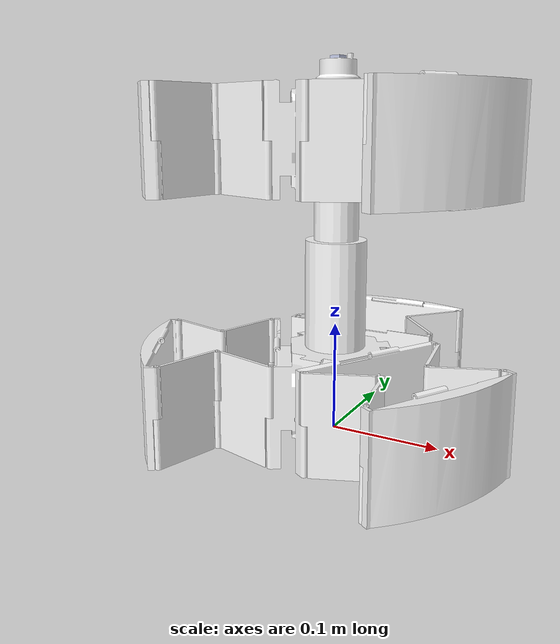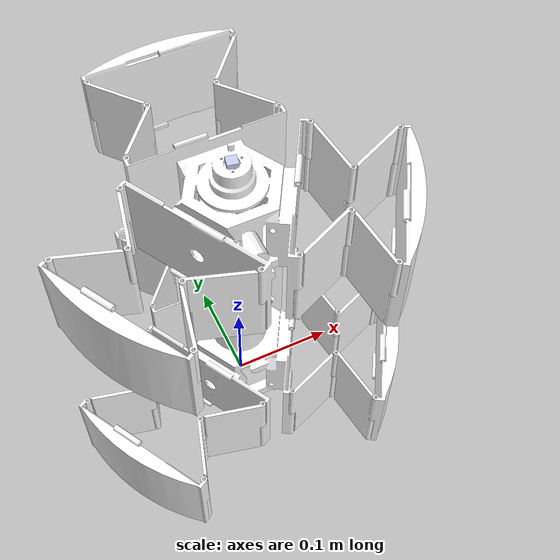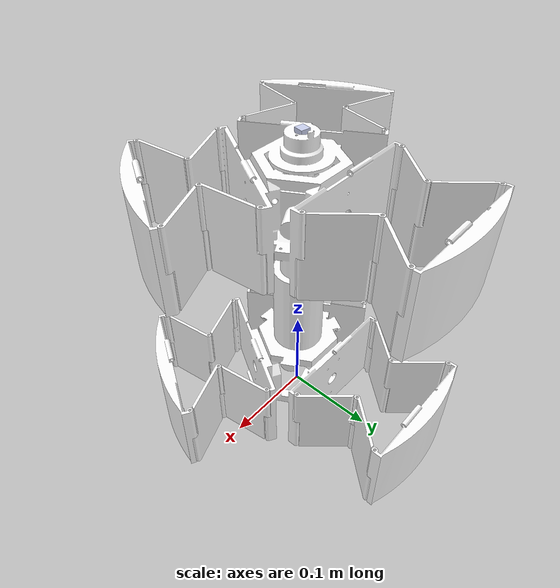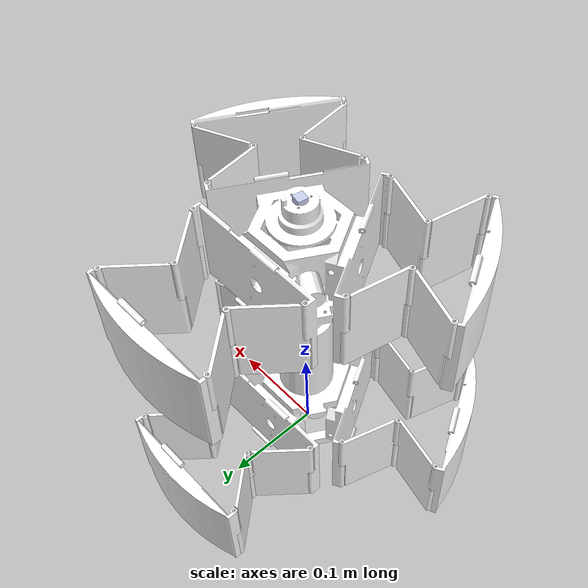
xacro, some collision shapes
<?xml version="1.0"?>
<robot name="robot_model" xmlns:xacro="http://www.ros.org/wiki/xacro">
  <link
    name="base_link">
    <inertial>
      <origin
        xyz="0 -6.9389E-17 0.061246"
        rpy="0 0 0" />
      <mass
        value="0.50026" />
      <inertia
        ixx="0.0011078"
        ixy="5.421E-20"
        ixz="2.1176E-20"
        iyy="0.0011078"
        iyz="-5.438E-19"
        izz="0.00063517" />
    </inertial>
    <visual>
      <origin
        xyz="0 0 0"
        rpy="0 0 0" />
      <geometry>
        <mesh
          filename="package://robot_model/meshes/base_link.STL" />
      </geometry>
      <material
        name="">
        <color
          rgba="1 1 1 1" />
      </material>
    </visual>
    <collision>
      <origin
        xyz="0 0 0"
        rpy="0 0 0" />
      <geometry>
        <!--mesh
          filename="package://robot_model/meshes/base_link.STL" /-->
        <box size="0.01 0.01 0.01" />
      </geometry>
    </collision>
  </link>
  <link
    name="bottom_link_1_1">
    <inertial>
      <origin
        xyz="0.032953 0.0015 -0.043236"
        rpy="0 0 0" />
      <mass
        value="0.016709" />
      <inertia
        ixx="1.1115E-05"
        ixy="-8.0627E-08"
        ixz="1.8107E-06"
        iyy="1.6771E-05"
        iyz="5.8697E-08"
        izz="5.6972E-06" />
    </inertial>
    <visual>
      <origin
        xyz="0 0 0"
        rpy="0 0 0" />
      <geometry>
        <mesh
          filename="package://robot_model/meshes/bottom_link_1_1.STL" />
      </geometry>
      <material
        name="">
        <color
          rgba="1 1 1 1" />
      </material>
    </visual>
    <collision>
      <origin
        xyz="0 0 0"
        rpy="0 0 0" />
      <geometry>
        <!-- mesh
          filename="package://robot_model/meshes/bottom_link_1_1.STL" /-->
        <box size="0.01 0.01 0.01" />
      </geometry>
    </collision>
  </link>
  <joint
    name="bottom_joint_1_1"
    type="revolute">
    <origin
      xyz="-0.07 0.059 0.085"
      rpy="0 0.055591 0.85204" />
    <parent
      link="base_link" />
    <child
      link="bottom_link_1_1" />
    <axis
      xyz="0.055562 0 -0.99846" />
    <limit
      lower="-3.14"
      upper="3.14"
      effort="1"
      velocity="10" />
  </joint>
  <link
    name="bottom_link_1_2">
    <inertial>
      <origin
        xyz="0.0305 -0.0015 -0.045"
        rpy="0 0 0" />
      <mass
        value="0.016709" />
      <inertia
        ixx="1.1299E-05"
        ixy="7.7241E-08"
        ixz="1.499E-06"
        iyy="1.6771E-05"
        iyz="-6.3086E-08"
        izz="5.5131E-06" />
    </inertial>
    <visual>
      <origin
        xyz="0 0 0"
        rpy="0 0 0" />
      <geometry>
        <mesh
          filename="package://robot_model/meshes/bottom_link_1_2.STL" />
      </geometry>
      <material
        name="">
        <color
          rgba="1 1 1 1" />
      </material>
    </visual>
    <collision>
      <origin
        xyz="0 0 0"
        rpy="0 0 0" />
      <geometry>
        <!-- mesh
          filename="package://robot_model/meshes/bottom_link_1_2.STL" /-->
          <box size="0.01 0.01 0.01" />
      </geometry>
    </collision>
  </link>
  <joint
    name="bottom_joint_1_2"
    type="revolute">
    <origin
      xyz="0.060906 0.003 0.0033893"
      rpy="-0.055099 -0.0073835 1.4377" />
    <parent
      link="bottom_link_1_1" />
    <child
      link="bottom_link_1_2" />
    <axis
      xyz="0 0 -1" />
    <limit
      lower="-3.14"
      upper="3.14"
      effort="1"
      velocity="10" />
  </joint>
  <link
    name="bottom_link_1_3">
    <inertial>
      <origin
        xyz="0.070001 0.011933 -0.044687"
        rpy="0 0 0" />
      <mass
        value="0.14664" />
      <inertia
        ixx="0.00010095"
        ixy="4.7547E-10"
        ixz="-9.3214E-07"
        iyy="0.00028902"
        iyz="3.1691E-07"
        izz="0.00019062" />
    </inertial>
    <visual>
      <origin
        xyz="0 0 0"
        rpy="0 0 0" />
      <geometry>
        <mesh
          filename="package://robot_model/meshes/bottom_link_1_3.STL" />
      </geometry>
      <material
        name="">
        <color
          rgba="1 1 1 1" />
      </material>
    </visual>
    <collision>
      <origin
        xyz="0 0 0"
        rpy="0 0 0" />
      <geometry>
        <!-- mesh
          filename="package://robot_model/meshes/bottom_link_1_3.STL" /-->
          <box size="0.01 0.01 0.01" />
      </geometry>
    </collision>
  </link>
  <joint
    name="bottom_joint_1_3"
    type="revolute">
    <origin
      xyz="0.061 -0.003 0"
      rpy="0 0 -2.2896" />
    <parent
      link="bottom_link_1_2" />
    <child
      link="bottom_link_1_3" />
    <axis
      xyz="0 0 -1" />
    <limit
      lower="-3.14"
      upper="3.14"
      effort="1"
      velocity="10" />
  </joint>
  <link
    name="bottom_link_1_4">
    <inertial>
      <origin
        xyz="0.0305 -0.0015 -0.0450000000000001"
        rpy="0 0 0" />
      <mass
        value="0.0167092266655334" />
      <inertia
        ixx="1.12993899246112E-05"
        ixy="7.72408699481511E-08"
        ixz="1.49898179922226E-06"
        iyy="1.67711222702261E-05"
        iyz="-6.308639996175E-08"
        izz="5.51305619636719E-06" />
    </inertial>
    <visual>
      <origin
        xyz="0 0 0"
        rpy="0 0 0" />
      <geometry>
        <mesh
          filename="package://robot_model/meshes/bottom_link_1_4.STL" />
      </geometry>
      <material
        name="">
        <color
          rgba="1 1 1 1" />
      </material>
    </visual>
    <collision>
      <origin
        xyz="0 0 0"
        rpy="0 0 0" />
      <geometry>
        <!--mesh
          filename="package://robot_model/meshes/bottom_link_1_4.STL" /-->
          <box size="0.01 0.01 0.01" />
      </geometry>
    </collision>
  </link>
  <joint
    name="bottom_joint_1_4"
    type="revolute">
    <origin
      xyz="0.07 0.059 0.085"
      rpy="0 0 2.2896" />
    <parent
      link="base_link" />
    <child
      link="bottom_link_1_4" />
    <axis
      xyz="0 0 -1" />
    <limit
      lower="-3.14"
      upper="3.14"
      effort="1"
      velocity="10" />
  </joint>
  <link
    name="bottom_link_1_5">
    <inertial>
      <origin
        xyz="0.0305 0.0015 -0.045"
        rpy="0 0 0" />
      <mass
        value="0.0167092266655333" />
      <inertia
        ixx="1.12993899246111E-05"
        ixy="-7.72408699481488E-08"
        ixz="1.49898179922225E-06"
        iyy="1.67711222702261E-05"
        iyz="6.30863999617497E-08"
        izz="5.51305619636717E-06" />
    </inertial>
    <visual>
      <origin
        xyz="0 0 0"
        rpy="0 0 0" />
      <geometry>
        <mesh
          filename="package://robot_model/meshes/bottom_link_1_5.STL" />
      </geometry>
      <material
        name="">
        <color
          rgba="1 1 1 1" />
      </material>
    </visual>
    <collision>
      <origin
        xyz="0 0 0"
        rpy="0 0 0" />
      <geometry>
        <!--mesh
          filename="package://robot_model/meshes/bottom_link_1_5.STL" /-->
          <box size="0.01 0.01 0.01" />
      </geometry>
    </collision>
  </link>
  <joint
    name="bottom_joint_1_5"
    type="revolute">
    <origin
      xyz="0.061 -0.003 0"
      rpy="0 0 -1.4375" />
    <parent
      link="bottom_link_1_4" />
    <child
      link="bottom_link_1_5" />
    <axis
      xyz="0 0 -1" />
    <limit
      lower="-3.14"
      upper="3.14"
      effort="1"
      velocity="10" />
  </joint>
  <link
    name="bottom_link_2_1">
    <inertial>
      <origin
        xyz="0.0323038618709952 0.00150000000002677 -0.0437231118313758"
        rpy="0 0 0" />
      <mass
        value="0.0167092266655333" />
      <inertia
        ixx="1.11680760652139E-05"
        ixy="-7.97412442441504E-08"
        ixz="1.72902542443584E-06"
        iyy="1.6771122270226E-05"
        iyz="5.98947394758148E-08"
        izz="5.64437005576434E-06" />
    </inertial>
    <visual>
      <origin
        xyz="0 0 0"
        rpy="0 0 0" />
      <geometry>
        <mesh
          filename="package://robot_model/meshes/bottom_link_2_1.STL" />
      </geometry>
      <material
        name="">
        <color
          rgba="1 1 1 1" />
      </material>
    </visual>
    <collision>
      <origin
        xyz="0 0 0"
        rpy="0 0 0" />
      <geometry>
        <!-- mesh
          filename="package://robot_model/meshes/bottom_link_2_1.STL" /-->
          <box size="0.01 0.01 0.01" />
      </geometry>
    </collision>
  </link>
  <joint
    name="bottom_joint_2_1"
    type="revolute">
    <origin
      xyz="0.086095 0.031122 0.085"
      rpy="0 0.040657 -1.4272" />
    <parent
      link="base_link" />
    <child
      link="bottom_link_2_1" />
    <axis
      xyz="0.040646 0 -0.99917" />
    <limit
      lower="-3.14"
      upper="3.14"
      effort="1"
      velocity="10" />
  </joint>
  <link
    name="bottom_link_2_2">
    <inertial>
      <origin
        xyz="0.0316816988000864 -0.0015 -0.0441760111501776"
        rpy="0 0 0" />
      <mass
        value="0.0167092266655333" />
      <inertia
        ixx="1.12159150610143E-05"
        ixy="7.88854092632054E-08"
        ixz="1.65014902364536E-06"
        iyy="1.67711222702261E-05"
        iyz="-6.10175225313025E-08"
        izz="5.59653105996396E-06" />
    </inertial>
    <visual>
      <origin
        xyz="0 0 0"
        rpy="0 0 0" />
      <geometry>
        <mesh
          filename="package://robot_model/meshes/bottom_link_2_2.STL" />
      </geometry>
      <material
        name="">
        <color
          rgba="1 1 1 1" />
      </material>
    </visual>
    <collision>
      <origin
        xyz="0 0 0"
        rpy="0 0 0" />
      <geometry>
        <!-- mesh
          filename="package://robot_model/meshes/bottom_link_2_2.STL" /-->
          <box size="0.01 0.01 0.01" />
      </geometry>
    </collision>
  </link>
  <joint
    name="bottom_joint_2_2"
    type="revolute">
    <origin
      xyz="0.06095 0.003 0.0024794"
      rpy="-0.039551 0.036001 1.806" />
    <parent
      link="bottom_link_2_1" />
    <child
      link="bottom_link_2_2" />
    <axis
      xyz="0.026498 0 -0.99965" />
    <limit
      lower="-3.14"
      upper="3.14"
      effort="1"
      velocity="10" />
  </joint>
  <link
    name="bottom_link_2_3">
    <inertial>
      <origin
        xyz="0.0699999817100601 0.0119307475595782 -0.0446871541670269"
        rpy="0 0 0" />
      <mass
        value="0.14664086162693" />
      <inertia
        ixx="0.0001009461163209"
        ixy="4.08874533460325E-10"
        ixz="-9.32140285730746E-07"
        iyy="0.000289021628271777"
        iyz="3.16909007234173E-07"
        izz="0.000190624860098751" />
    </inertial>
    <visual>
      <origin
        xyz="0 0 0"
        rpy="0 0 0" />
      <geometry>
        <mesh
          filename="package://robot_model/meshes/bottom_link_2_3.STL" />
      </geometry>
      <material
        name="">
        <color
          rgba="1 1 1 1" />
      </material>
    </visual>
    <collision>
      <origin
        xyz="0 0 0"
        rpy="0 0 0" />
      <geometry>
        <!--mesh
          filename="package://robot_model/meshes/bottom_link_2_3.STL" /-->
          <box size="0.01 0.01 0.01" />
      </geometry>
    </collision>
  </link>
  <joint
    name="bottom_joint_2_3"
    type="revolute">
    <origin
      xyz="0.060979 -0.003 0.0016164"
      rpy="0.016401 0.020817 -2.4742" />
    <parent
      link="bottom_link_2_2" />
    <child
      link="bottom_link_2_3" />
    <axis
      xyz="0 0 -1" />
    <limit
      lower="-3.14"
      upper="3.14"
      effort="1"
      velocity="10" />
  </joint>
  <link
    name="bottom_link_2_4">
    <inertial>
      <origin
        xyz="0.0316816988000293 -0.00149999999997225 -0.0441760111501792"
        rpy="0 0 0" />
      <mass
        value="0.0167092266655334" />
      <inertia
        ixx="1.12159150610143E-05"
        ixy="7.88854092632037E-08"
        ixz="1.65014902364536E-06"
        iyy="1.67711222702261E-05"
        iyz="-6.10175225313023E-08"
        izz="5.59653105996396E-06" />
    </inertial>
    <visual>
      <origin
        xyz="0 0 0"
        rpy="0 0 0" />
      <geometry>
        <mesh
          filename="package://robot_model/meshes/bottom_link_2_4.STL" />
      </geometry>
      <material
        name="">
        <color
          rgba="1 1 1 1" />
      </material>
    </visual>
    <collision>
      <origin
        xyz="0 0 0"
        rpy="0 0 0" />
      <geometry>
        <!--mesh
          filename="package://robot_model/meshes/bottom_link_2_4.STL" /-->
          <box size="0.01 0.01 0.01" />
      </geometry>
    </collision>
  </link>
  <joint
    name="bottom_joint_2_4"
    type="revolute">
    <origin
      xyz="0.016095 -0.090122 0.085"
      rpy="0 0.026501 0.38001" />
    <parent
      link="base_link" />
    <child
      link="bottom_link_2_4" />
    <axis
      xyz="0.026498 0 -0.99965" />
    <limit
      lower="-3.14"
      upper="3.14"
      effort="1"
      velocity="10" />
  </joint>
  <link
    name="bottom_link_2_5">
    <inertial>
      <origin
        xyz="0.0323038618710062 0.00149999999999999 -0.0437231118313753"
        rpy="0 0 0" />
      <mass
        value="0.0167092266655334" />
      <inertia
        ixx="1.11680760652139E-05"
        ixy="-7.97412442441517E-08"
        ixz="1.72902542443589E-06"
        iyy="1.67711222702261E-05"
        iyz="5.98947394758156E-08"
        izz="5.64437005576438E-06" />
    </inertial>
    <visual>
      <origin
        xyz="0 0 0"
        rpy="0 0 0" />
      <geometry>
        <mesh
          filename="package://robot_model/meshes/bottom_link_2_5.STL" />
      </geometry>
      <material
        name="">
        <color
          rgba="1 1 1 1" />
      </material>
    </visual>
    <collision>
      <origin
        xyz="0 0 0"
        rpy="0 0 0" />
      <geometry>
        <!--mesh
          filename="package://robot_model/meshes/bottom_link_2_5.STL" /-->
          <box size="0.01 0.01 0.01" />
      </geometry>
    </collision>
  </link>
  <joint
    name="bottom_joint_2_5"
    type="revolute">
    <origin
      xyz="0.060979 -0.003 0.0016164"
      rpy="0.025792 0.04685 -1.8061" />
    <parent
      link="bottom_link_2_4" />
    <child
      link="bottom_link_2_5" />
    <axis
      xyz="0.040646 0 -0.99917" />
    <limit
      lower="-3.14"
      upper="3.14"
      effort="1"
      velocity="10" />
  </joint>
  <link
    name="bottom_link_3_1">
    <inertial>
      <origin
        xyz="0.0304999999999998 0.00149999999999997 -0.045"
        rpy="0 0 0" />
      <mass
        value="0.0167092266655333" />
      <inertia
        ixx="1.12993899246111E-05"
        ixy="-7.72408699481509E-08"
        ixz="1.49898179922225E-06"
        iyy="1.6771122270226E-05"
        iyz="6.30863999617512E-08"
        izz="5.51305619636717E-06" />
    </inertial>
    <visual>
      <origin
        xyz="0 0 0"
        rpy="0 0 0" />
      <geometry>
        <mesh
          filename="package://robot_model/meshes/bottom_link_3_1.STL" />
      </geometry>
      <material
        name="">
        <color
          rgba="1 1 1 1" />
      </material>
    </visual>
    <collision>
      <origin
        xyz="0 0 0"
        rpy="0 0 0" />
      <geometry>
        <!--mesh
          filename="package://robot_model/meshes/bottom_link_3_1.STL" /-->
          <box size="0.01 0.01 0.01" />
      </geometry>
    </collision>
  </link>
  <joint
    name="bottom_joint_3_1"
    type="revolute">
    <origin
      xyz="-0.016095 -0.090122 0.085"
      rpy="0 0 2.9167" />
    <parent
      link="base_link" />
    <child
      link="bottom_link_3_1" />
    <axis
      xyz="0 0 -1" />
    <limit
      lower="-3.14"
      upper="3.14"
      effort="1"
      velocity="10" />
  </joint>
  <link
    name="bottom_link_3_2">
    <inertial>
      <origin
        xyz="0.0304999999999999 -0.00150000000000008 -0.045"
        rpy="0 0 0" />
      <mass
        value="0.0167092266655334" />
      <inertia
        ixx="1.12993899246111E-05"
        ixy="7.72408699481505E-08"
        ixz="1.49898179922225E-06"
        iyy="1.67711222702261E-05"
        iyz="-6.30863999617503E-08"
        izz="5.51305619636718E-06" />
    </inertial>
    <visual>
      <origin
        xyz="0 0 0"
        rpy="0 0 0" />
      <geometry>
        <mesh
          filename="package://robot_model/meshes/bottom_link_3_2.STL" />
      </geometry>
      <material
        name="">
        <color
          rgba="1 1 1 1" />
      </material>
    </visual>
    <collision>
      <origin
        xyz="0 0 0"
        rpy="0 0 0" />
      <geometry>
        <!--mesh
          filename="package://robot_model/meshes/bottom_link_3_2.STL" /-->
          <box size="0.01 0.01 0.01" />
      </geometry>
    </collision>
  </link>
  <joint
    name="bottom_joint_3_2"
    type="revolute">
    <origin
      xyz="0.061 0.003 0"
      rpy="0 0 1.497" />
    <parent
      link="bottom_link_3_1" />
    <child
      link="bottom_link_3_2" />
    <axis
      xyz="0 0 -1" />
    <limit
      lower="-3.14"
      upper="3.14"
      effort="1"
      velocity="10" />
  </joint>
  <link
    name="bottom_link_3_3">
    <inertial>
      <origin
        xyz="0.070000626800577 0.0119332957343058 -0.0446871895124752"
        rpy="0 0 0" />
      <mass
        value="0.14664410061026" />
      <inertia
        ixx="0.000100945970506456"
        ixy="4.06926128643931E-10"
        ixz="-9.32140319989326E-07"
        iyy="0.000289022168631917"
        iyz="3.16907445634966E-07"
        izz="0.000190625260305374" />
    </inertial>
    <visual>
      <origin
        xyz="0 0 0"
        rpy="0 0 0" />
      <geometry>
        <mesh
          filename="package://robot_model/meshes/bottom_link_3_3.STL" />
      </geometry>
      <material
        name="">
        <color
          rgba="1 1 1 1" />
      </material>
    </visual>
    <collision>
      <origin
        xyz="0 0 0"
        rpy="0 0 0" />
      <geometry>
        <!--mesh
          filename="package://robot_model/meshes/bottom_link_3_3.STL" /-->
          <box size="0.01 0.01 0.01" />
      </geometry>
    </collision>
  </link>
  <joint
    name="bottom_joint_3_3"
    type="revolute">
    <origin
      xyz="0.061 -0.003 0"
      rpy="0 0 -2.3193" />
    <parent
      link="bottom_link_3_2" />
    <child
      link="bottom_link_3_3" />
    <axis
      xyz="0 0 -1" />
    <limit
      lower="-3.14"
      upper="3.14"
      effort="1"
      velocity="10" />
  </joint>
  <link
    name="bottom_link_3_4">
    <inertial>
      <origin
        xyz="0.0304999999999999 -0.00149999999999999 -0.045"
        rpy="0 0 0" />
      <mass
        value="0.0167092266655333" />
      <inertia
        ixx="1.12993899246111E-05"
        ixy="7.72408699481509E-08"
        ixz="1.49898179922225E-06"
        iyy="1.67711222702261E-05"
        iyz="-6.30863999617501E-08"
        izz="5.51305619636718E-06" />
    </inertial>
    <visual>
      <origin
        xyz="0 0 0"
        rpy="0 0 0" />
      <geometry>
        <mesh
          filename="package://robot_model/meshes/bottom_link_3_4.STL" />
      </geometry>
      <material
        name="">
        <color
          rgba="1 1 1 1" />
      </material>
    </visual>
    <collision>
      <origin
        xyz="0 0 0"
        rpy="0 0 0" />
      <geometry>
        <!--mesh
          filename="package://robot_model/meshes/bottom_link_3_4.STL" /-->
          <box size="0.01 0.01 0.01" />
      </geometry>
    </collision>
  </link>
  <joint
    name="bottom_joint_3_4"
    type="revolute">
    <origin
      xyz="-0.086095 0.031122 0.085"
      rpy="0 0 -1.8695" />
    <parent
      link="base_link" />
    <child
      link="bottom_link_3_4" />
    <axis
      xyz="0 0 -1" />
    <limit
      lower="-3.14"
      upper="3.14"
      effort="1"
      velocity="10" />
  </joint>
  <link
    name="bottom_link_3_5">
    <inertial>
      <origin
        xyz="0.0305 0.00149999999999995 -0.045"
        rpy="0 0 0" />
      <mass
        value="0.0167092266655334" />
      <inertia
        ixx="1.12993899246111E-05"
        ixy="-7.72408699481521E-08"
        ixz="1.49898179922225E-06"
        iyy="1.67711222702261E-05"
        iyz="6.3086399961751E-08"
        izz="5.51305619636718E-06" />
    </inertial>
    <visual>
      <origin
        xyz="0 0 0"
        rpy="0 0 0" />
      <geometry>
        <mesh
          filename="package://robot_model/meshes/bottom_link_3_5.STL" />
      </geometry>
      <material
        name="">
        <color
          rgba="1 1 1 1" />
      </material>
    </visual>
    <collision>
      <origin
        xyz="0 0 0"
        rpy="0 0 0" />
      <geometry>
        <!--mesh
          filename="package://robot_model/meshes/bottom_link_3_5.STL" /-->
          <box size="0.01 0.01 0.01" />
      </geometry>
    </collision>
  </link>
  <joint
    name="bottom_joint_3_5"
    type="revolute">
    <origin
      xyz="0.061 -0.003 0"
      rpy="0 0 -1.497" />
    <parent
      link="bottom_link_3_4" />
    <child
      link="bottom_link_3_5" />
    <axis
      xyz="0 0 -1" />
    <limit
      lower="-3.14"
      upper="3.14"
      effort="1"
      velocity="10" />
  </joint>
  <link
    name="upper_base_link">
    <inertial>
      <origin
        xyz="3.8054621693262E-06 1.02185648802045E-05 0.10794535502489"
        rpy="0 0 0" />
      <mass
        value="0.385672064342801" />
      <inertia
        ixx="0.00093048171448076"
        ixy="-1.91722020977971E-08"
        ixz="-7.52239479311428E-09"
        iyy="0.000930437800700538"
        iyz="-2.00548156529821E-08"
        izz="0.000352171446989648" />
    </inertial>
    <visual>
      <origin
        xyz="0 0 0"
        rpy="0 0 0" />
      <geometry>
        <mesh filename="package://robot_model/meshes/upper_base_link.STL">
          <scale>0.5 0.5 0.5</scale>
        </mesh>
      </geometry>
      <material
        name="">
        <color
          rgba="1 1 1 1" />
      </material>
    </visual>
    <collision>
      <origin
        xyz="0 0 0"
        rpy="0 0 0" />
      <geometry>
        <!--mesh
          filename="package://robot_model/meshes/upper_base_link.STL" /-->
          <box size="0.01 0.01 0.01" />
      </geometry>
    </collision>
  </link>
  <joint
    name="upper_base_joint"
    type="prismatic">
    <origin
      xyz="0 0 0.13128"
      rpy="0 0 0" />
    <parent
      link="base_link" />
    <child
      link="upper_base_link" />
    <axis
      xyz="0 0 1" />
    <limit
      lower="-1"
      upper="1"
      effort="10"
      velocity="10" />
  </joint>
  <link
    name="upper_link_1_1">
    <inertial>
      <origin
        xyz="0.0330321547264932 0.00150000000000104 -0.0431755342077551"
        rpy="0 0 0" />
      <mass
        value="0.0167092266655333" />
      <inertia
        ixx="1.14520947743875E-05"
        ixy="-7.34932329622697E-08"
        ixz="-1.15759511079079E-06"
        iyy="1.67711222702261E-05"
        iyz="-6.74150618128821E-08"
        izz="5.36035134659078E-06" />
    </inertial>
    <visual>
      <origin
        xyz="0 0 0"
        rpy="0 0 0" />
      <geometry>
        <mesh
          filename="package://robot_model/meshes/upper_link_1_1.STL" />
      </geometry>
      <material
        name="">
        <color
          rgba="1 1 1 1" />
      </material>
    </visual>
    <collision>
      <origin
        xyz="0 0 0"
        rpy="0 0 0" />
      <geometry>
        <!-- mesh
          filename="package://robot_model/meshes/upper_link_1_1.STL" /-->
          <box size="0.01 0.01 0.01" />
      </geometry>
    </collision>
  </link>
  <joint
    name="upper_joint_1_1"
    type="revolute">
    <origin
      xyz="-0.07 0.059 0.18"
      rpy="0 0.057419 0.86401" />
    <parent
      link="upper_base_link" />
    <child
      link="upper_link_1_1" />
    <axis
      xyz="0.057387 0 -0.99835" />
    <limit
      lower="-3.14"
      upper="3.14"
      effort="1"
      velocity="10" />
  </joint>
  <link
    name="upper_link_1_2">
    <inertial>
      <origin
        xyz="0.0304999999999992 -0.00149999999999961 -0.045"
        rpy="0 0 0" />
      <mass
        value="0.0167092266655333" />
      <inertia
        ixx="1.12993899246111E-05"
        ixy="7.72408699481494E-08"
        ixz="-1.49898179922226E-06"
        iyy="1.67711222702261E-05"
        iyz="6.30863999617509E-08"
        izz="5.51305619636718E-06" />
    </inertial>
    <visual>
      <origin
        xyz="0 0 0"
        rpy="0 0 0" />
      <geometry>
        <mesh
          filename="package://robot_model/meshes/upper_link_1_2.STL" />
      </geometry>
      <material
        name="">
        <color
          rgba="1 1 1 1" />
      </material>
    </visual>
    <collision>
      <origin
        xyz="0 0 0"
        rpy="0 0 0" />
      <geometry>
        <!--mesh
          filename="package://robot_model/meshes/upper_link_1_2.STL" /-->
          <box size="0.01 0.01 0.01" />
      </geometry>
    </collision>
  </link>
  <joint
    name="upper_joint_1_2"
    type="revolute">
    <origin
      xyz="0.060899 0.003 0.0035006"
      rpy="-0.056712 -0.0089859 1.4138" />
    <parent
      link="upper_link_1_1" />
    <child
      link="upper_link_1_2" />
    <axis
      xyz="0 0 -1" />
    <limit
      lower="-3.14"
      upper="3.14"
      effort="1"
      velocity="10" />
  </joint>
  <link
    name="upper_link_1_3">
    <inertial>
      <origin
        xyz="0.0699994466294927 0.011932926537144 -0.0453128069074418"
        rpy="0 0 0" />
      <mass
        value="0.146644072509461" />
      <inertia
        ixx="0.000100945826420388"
        ixy="-4.51350548183796E-10"
        ixz="-9.32140878461183E-07"
        iyy="0.000289022708610787"
        iyz="-3.16905927234267E-07"
        izz="0.000190625661837862" />
    </inertial>
    <visual>
      <origin
        xyz="0 0 0"
        rpy="0 0 0" />
      <geometry>
        <mesh
          filename="package://robot_model/meshes/upper_link_1_3.STL" />
      </geometry>
      <material
        name="">
        <color
          rgba="1 1 1 1" />
      </material>
    </visual>
    <collision>
      <origin
        xyz="0 0 0"
        rpy="0 0 0" />
      <geometry>
        <!-- mesh
          filename="package://robot_model/meshes/upper_link_1_3.STL" /-->
          <box size="0.01 0.01 0.01" />
      </geometry>
    </collision>
  </link>
  <joint
    name="upper_joint_1_3"
    type="revolute">
    <origin
      xyz="0.061 -0.003 0"
      rpy="0 0 -2.2776" />
    <parent
      link="upper_link_1_2" />
    <child
      link="upper_link_1_3" />
    <axis
      xyz="0 0 -1" />
    <limit
      lower="-3.14"
      upper="3.14"
      effort="1"
      velocity="10" />
  </joint>
  <link
    name="upper_link_1_4">
    <inertial>
      <origin
        xyz="0.0304999999999999 -0.00150000000000072 -0.045"
        rpy="0 0 0" />
      <mass
        value="0.0167092266655334" />
      <inertia
        ixx="1.12993899246111E-05"
        ixy="7.72408699481507E-08"
        ixz="-1.49898179922225E-06"
        iyy="1.67711222702261E-05"
        iyz="6.30863999617501E-08"
        izz="5.51305619636718E-06" />
    </inertial>
    <visual>
      <origin
        xyz="0 0 0"
        rpy="0 0 0" />
      <geometry>
        <mesh
          filename="package://robot_model/meshes/upper_link_1_4.STL" />
      </geometry>
      <material
        name="">
        <color
          rgba="1 1 1 1" />
      </material>
    </visual>
    <collision>
      <origin
        xyz="0 0 0"
        rpy="0 0 0" />
      <geometry>
        <!--mesh
          filename="package://robot_model/meshes/upper_link_1_4.STL" /-->
          <box size="0.01 0.01 0.01" />
      </geometry>
    </collision>
  </link>
  <joint
    name="upper_joint_1_4"
    type="revolute">
    <origin
      xyz="0.07 0.059 0.18"
      rpy="0 0 2.2776" />
    <parent
      link="upper_base_link" />
    <child
      link="upper_link_1_4" />
    <axis
      xyz="0 0 -1" />
    <limit
      lower="-3.14"
      upper="3.14"
      effort="1"
      velocity="10" />
  </joint>
  <link
    name="upper_link_1_5">
    <inertial>
      <origin
        xyz="0.0330321547264928 0.00150000000000001 -0.0431755342077551"
        rpy="0 0 0" />
      <mass
        value="0.0167092266655333" />
      <inertia
        ixx="1.14520947743875E-05"
        ixy="-7.34932329622697E-08"
        ixz="-1.15759511079079E-06"
        iyy="1.67711222702261E-05"
        iyz="-6.74150618128823E-08"
        izz="5.36035134659077E-06" />
    </inertial>
    <visual>
      <origin
        xyz="0 0 0"
        rpy="0 0 0" />
      <geometry>
        <mesh
          filename="package://robot_model/meshes/upper_link_1_5.STL" />
      </geometry>
      <material
        name="">
        <color
          rgba="1 1 1 1" />
      </material>
    </visual>
    <collision>
      <origin
        xyz="0 0 0"
        rpy="0 0 0" />
      <geometry>
        <!--mesh
          filename="package://robot_model/meshes/upper_link_1_5.STL" /-->
          <box size="0.01 0.01 0.01" />
      </geometry>
    </collision>
  </link>
  <joint
    name="upper_joint_1_5"
    type="revolute">
    <origin
      xyz="0.061 -0.003 0"
      rpy="0 0.057419 -1.4136" />
    <parent
      link="upper_link_1_4" />
    <child
      link="upper_link_1_5" />
    <axis
      xyz="0.057387 0 -0.99835" />
    <limit
      lower="-3.14"
      upper="3.14"
      effort="1"
      velocity="10" />
  </joint>
  <link
    name="upper_link_2_1">
    <inertial>
      <origin
        xyz="0.0324368656416264 0.00149999999999348 -0.0436245314857049"
        rpy="0 0 0" />
      <mass
        value="0.0167092266655333" />
      <inertia
        ixx="1.14191973679731E-05"
        ixy="-7.44109634737808E-08"
        ixz="-1.24070413898489E-06"
        iyy="1.6771122270226E-05"
        iyz="-6.64007105789139E-08"
        izz="5.39324875300514E-06" />
    </inertial>
    <visual>
      <origin
        xyz="0 0 0"
        rpy="0 0 0" />
      <geometry>
        <mesh
          filename="package://robot_model/meshes/upper_link_2_1.STL" />
      </geometry>
      <material
        name="">
        <color
          rgba="1 1 1 1" />
      </material>
    </visual>
    <collision>
      <origin
        xyz="0 0 0"
        rpy="0 0 0" />
      <geometry>
        <!--mesh
          filename="package://robot_model/meshes/upper_link_2_1.STL" /-->
          <box size="0.01 0.01 0.01" />
      </geometry>
    </collision>
  </link>
  <joint
    name="upper_joint_2_1"
    type="revolute">
    <origin
      xyz="0.086095 0.031122 0.18"
      rpy="0 0.043703 -1.4652" />
    <parent
      link="upper_base_link" />
    <child
      link="upper_link_2_1" />
    <axis
      xyz="0.043689 0 -0.99905" />
    <limit
      lower="-3.14"
      upper="3.14"
      effort="1"
      velocity="10" />
  </joint>
  <link
    name="upper_link_2_2">
    <inertial>
      <origin
        xyz="0.0304999999999955 -0.00150000000000061 -0.045"
        rpy="0 0 0" />
      <mass
        value="0.0167092266655334" />
      <inertia
        ixx="1.12993899246111E-05"
        ixy="7.72408699481503E-08"
        ixz="-1.49898179922225E-06"
        iyy="1.67711222702261E-05"
        iyz="6.30863999617509E-08"
        izz="5.51305619636719E-06" />
    </inertial>
    <visual>
      <origin
        xyz="0 0 0"
        rpy="0 0 0" />
      <geometry>
        <mesh
          filename="package://robot_model/meshes/upper_link_2_2.STL" />
      </geometry>
      <material
        name="">
        <color
          rgba="1 1 1 1" />
      </material>
    </visual>
    <collision>
      <origin
        xyz="0 0 0"
        rpy="0 0 0" />
      <geometry>
        <!--mesh
          filename="package://robot_model/meshes/upper_link_2_2.STL" /-->
          <box size="0.01 0.01 0.01" />
      </geometry>
    </collision>
  </link>
  <joint
    name="upper_joint_2_2"
    type="revolute">
    <origin
      xyz="0.060942 0.003 0.002665"
      rpy="-0.041591 0.013425 1.8828" />
    <parent
      link="upper_link_2_1" />
    <child
      link="upper_link_2_2" />
    <axis
      xyz="0 0 -1" />
    <limit
      lower="-3.14"
      upper="3.14"
      effort="1"
      velocity="10" />
  </joint>
  <link
    name="upper_link_2_3">
    <inertial>
      <origin
        xyz="0.069999389681573 0.0119332969912204 -0.045312810858336"
        rpy="0 0 0" />
      <mass
        value="0.146644101046133" />
      <inertia
        ixx="0.000100945970159477"
        ixy="-4.41242520743496E-10"
        ixz="-9.32140680689395E-07"
        iyy="0.000289022172944385"
        iyz="-3.16906462410994E-07"
        izz="0.00019062526435715" />
    </inertial>
    <visual>
      <origin
        xyz="0 0 0"
        rpy="0 0 0" />
      <geometry>
        <mesh
          filename="package://robot_model/meshes/upper_link_2_3.STL" />
      </geometry>
      <material
        name="">
        <color
          rgba="1 1 1 1" />
      </material>
    </visual>
    <collision>
      <origin
        xyz="0 0 0"
        rpy="0 0 0" />
      <geometry>
        <!--mesh
          filename="package://robot_model/meshes/upper_link_2_3.STL" /-->
          <box size="0.01 0.01 0.01" />
      </geometry>
    </collision>
  </link>
  <joint
    name="upper_joint_2_3"
    type="revolute">
    <origin
      xyz="0.061 -0.003 0"
      rpy="0 0 -2.5124" />
    <parent
      link="upper_link_2_2" />
    <child
      link="upper_link_2_3" />
    <axis
      xyz="0 0 -1" />
    <limit
      lower="-3.14"
      upper="3.14"
      effort="1"
      velocity="10" />
  </joint>
  <link
    name="upper_link_2_4">
    <inertial>
      <origin
        xyz="0.0317244968562645 -0.00149999999995729 -0.0441452862626575"
        rpy="0 0 0" />
      <mass
        value="0.0167092266655333" />
      <inertia
        ixx="1.13773378479123E-05"
        ixy="7.54789496332979E-08"
        ixz="-1.33784821934645E-06"
        iyy="1.6771122270226E-05"
        iyz="6.51841546139475E-08"
        izz="5.435108273066E-06" />
    </inertial>
    <visual>
      <origin
        xyz="0 0 0"
        rpy="0 0 0" />
      <geometry>
        <mesh
          filename="package://robot_model/meshes/upper_link_2_4.STL" />
      </geometry>
      <material
        name="">
        <color
          rgba="1 1 1 1" />
      </material>
    </visual>
    <collision>
      <origin
        xyz="0 0 0"
        rpy="0 0 0" />
      <geometry>
        <!--mesh
          filename="package://robot_model/meshes/upper_link_2_4.STL" /-->
          <box size="0.01 0.01 0.01" />
      </geometry>
    </collision>
  </link>
  <joint
    name="upper_joint_2_4"
    type="revolute">
    <origin
      xyz="0.016095 -0.090122 0.18"
      rpy="0 0.02747 0.41796" />
    <parent
      link="upper_base_link" />
    <child
      link="upper_link_2_4" />
    <axis
      xyz="0.027467 0 -0.99962" />
    <limit
      lower="-3.14"
      upper="3.14"
      effort="1"
      velocity="10" />
  </joint>
  <link
    name="upper_link_2_5">
    <inertial>
      <origin
        xyz="0.0324368656416042 0.00150000000016408 -0.0436245314857071"
        rpy="0 0 0" />
      <mass
        value="0.0167092266655334" />
      <inertia
        ixx="1.14191973679731E-05"
        ixy="-7.44109634737855E-08"
        ixz="-1.24070413898513E-06"
        iyy="1.67711222702261E-05"
        iyz="-6.64007105789104E-08"
        izz="5.39324875300525E-06" />
    </inertial>
    <visual>
      <origin
        xyz="0 0 0"
        rpy="0 0 0" />
      <geometry>
        <mesh
          filename="package://robot_model/meshes/upper_link_2_5.STL" />
      </geometry>
      <material
        name="">
        <color
          rgba="1 1 1 1" />
      </material>
    </visual>
    <collision>
      <origin
        xyz="0 0 0"
        rpy="0 0 0" />
      <geometry>
        <!--mesh
          filename="package://robot_model/meshes/upper_link_2_5.STL" /-->
          <box size="0.01 0.01 0.01" />
      </geometry>
    </collision>
  </link>
  <joint
    name="upper_joint_2_5"
    type="revolute">
    <origin
      xyz="0.060977 -0.003 0.0016755"
      rpy="0.026176 0.052128 -1.8819" />
    <parent
      link="upper_link_2_4" />
    <child
      link="upper_link_2_5" />
    <axis
      xyz="0.043689 0 -0.99905" />
    <limit
      lower="-3.14"
      upper="3.14"
      effort="1"
      velocity="10" />
  </joint>
  <link
    name="upper_link_3_1">
    <inertial>
      <origin
        xyz="0.0304999999999999 0.00149999999999989 -0.0450000000000001"
        rpy="0 0 0" />
      <mass
        value="0.0167092266655334" />
      <inertia
        ixx="1.12993899246111E-05"
        ixy="-7.724086994815E-08"
        ixz="-1.49898179922226E-06"
        iyy="1.67711222702261E-05"
        iyz="-6.30863999617502E-08"
        izz="5.51305619636718E-06" />
    </inertial>
    <visual>
      <origin
        xyz="0 0 0"
        rpy="0 0 0" />
      <geometry>
        <mesh
          filename="package://robot_model/meshes/upper_link_3_1.STL" />
      </geometry>
      <material
        name="">
        <color
          rgba="1 1 1 1" />
      </material>
    </visual>
    <collision>
      <origin
        xyz="0 0 0"
        rpy="0 0 0" />
      <geometry>
        <!-- mesh
          filename="package://robot_model/meshes/upper_link_3_1.STL" /-->
          <box size="0.01 0.01 0.01" />
      </geometry>
    </collision>
  </link>
  <joint
    name="upper_joint_3_1"
    type="revolute">
    <origin
      xyz="-0.016095 -0.090122 0.18"
      rpy="0 0 2.8286" />
    <parent
      link="upper_base_link" />
    <child
      link="upper_link_3_1" />
    <axis
      xyz="0 0 -1" />
    <limit
      lower="-3.14"
      upper="3.14"
      effort="1"
      velocity="10" />
  </joint>
  <link
    name="upper_link_3_2">
    <inertial>
      <origin
        xyz="0.0361497975321969 -0.00150000000000662 -0.0406010115438156"
        rpy="0 0 0" />
      <mass
        value="0.0167092266655333" />
      <inertia
        ixx="1.15900428076615E-05"
        ixy="6.82793569492282E-08"
        ixz="-6.93291248731808E-07"
        iyy="1.67711222702261E-05"
        iyz="7.26909572442189E-08"
        izz="5.22240331331676E-06" />
    </inertial>
    <visual>
      <origin
        xyz="0 0 0"
        rpy="0 0 0" />
      <geometry>
        <mesh
          filename="package://robot_model/meshes/upper_link_3_2.STL" />
      </geometry>
      <material
        name="">
        <color
          rgba="1 1 1 1" />
      </material>
    </visual>
    <collision>
      <origin
        xyz="0 0 0"
        rpy="0 0 0" />
      <geometry>
        <!--mesh
          filename="package://robot_model/meshes/upper_link_3_2.STL" /-->
          <box size="0.01 0.01 0.01" />
      </geometry>
    </collision>
  </link>
  <joint
    name="upper_joint_3_2"
    type="revolute">
    <origin
      xyz="0.061 0.003 0"
      rpy="0 0.13181 1.6732" />
    <parent
      link="upper_link_3_1" />
    <child
      link="upper_link_3_2" />
    <axis
      xyz="0.13143 0 -0.99133" />
    <limit
      lower="-3.14"
      upper="3.14"
      effort="1"
      velocity="10" />
  </joint>
  <link
    name="upper_link_3_3">
    <inertial>
      <origin
        xyz="0.0699993753130561 -0.0457870749202472 -0.0099598017798079"
        rpy="0 0 0" />
      <mass
        value="0.146644087607802" />
      <inertia
        ixx="0.000100945928680762"
        ixy="-9.31248292172101E-07"
        ixz="4.07714842629275E-08"
        iyy="0.00019083733077368"
        iyz="4.57281409964629E-06"
        izz="0.000288810381434377" />
    </inertial>
    <visual>
      <origin
        xyz="0 0 0"
        rpy="0 0 0" />
      <geometry>
        <mesh
          filename="package://robot_model/meshes/upper_link_3_3.STL" />
      </geometry>
      <material
        name="">
        <color
          rgba="1 1 1 1" />
      </material>
    </visual>
    <collision>
      <origin
        xyz="0 0 0"
        rpy="0 0 0" />
      <geometry>
        <!--mesh
          filename="package://robot_model/meshes/upper_link_3_3.STL" /-->
          <box size="0.01 0.01 0.01" />
      </geometry>
    </collision>
  </link>
  <joint
    name="upper_joint_3_3"
    type="revolute">
    <origin
      xyz="0.060471 -0.003 0.0080173"
      rpy="1.7027 0.097723 -2.403" />
    <parent
      link="upper_link_3_2" />
    <child
      link="upper_link_3_3" />
    <axis
      xyz="0 -0.99906 0.043305" />
    <limit
      lower="-3.14"
      upper="3.14"
      effort="1"
      velocity="10" />
  </joint>
  <link
    name="upper_link_3_4">
    <inertial>
      <origin
        xyz="0.0304999999999895 -0.00150000000001282 -0.0449999999999999"
        rpy="0 0 0" />
      <mass
        value="0.0167092266655333" />
      <inertia
        ixx="1.12993899246111E-05"
        ixy="7.72408699481505E-08"
        ixz="-1.49898179922226E-06"
        iyy="1.67711222702261E-05"
        iyz="6.30863999617504E-08"
        izz="5.51305619636718E-06" />
    </inertial>
    <visual>
      <origin
        xyz="0 0 0"
        rpy="0 0 0" />
      <geometry>
        <mesh
          filename="package://robot_model/meshes/upper_link_3_4.STL" />
      </geometry>
      <material
        name="">
        <color
          rgba="1 1 1 1" />
      </material>
    </visual>
    <collision>
      <origin
        xyz="0 0 0"
        rpy="0 0 0" />
      <geometry>
        <!--mesh
          filename="package://robot_model/meshes/upper_link_3_4.STL" /-->
          <box size="0.01 0.01 0.01" />
      </geometry>
    </collision>
  </link>
  <joint
    name="upper_joint_3_4"
    type="revolute">
    <origin
      xyz="-0.086095 0.031122 0.18"
      rpy="0 0 -1.7814" />
    <parent
      link="upper_base_link" />
    <child
      link="upper_link_3_4" />
    <axis
      xyz="0 0 -1" />
    <limit
      lower="-3.14"
      upper="3.14"
      effort="1"
      velocity="10" />
  </joint>
  <link
    name="upper_link_3_5">
    <inertial>
      <origin
        xyz="0.0304999999999942 0.00150000000000253 -0.0449999999999999"
        rpy="0 0 0" />
      <mass
        value="0.0167092266655333" />
      <inertia
        ixx="1.12993899246111E-05"
        ixy="-7.72408699481509E-08"
        ixz="-1.49898179922226E-06"
        iyy="1.67711222702261E-05"
        iyz="-6.30863999617506E-08"
        izz="5.51305619636718E-06" />
    </inertial>
    <visual>
      <origin
        xyz="0 0 0"
        rpy="0 0 0" />
      <geometry>
        <mesh
          filename="package://robot_model/meshes/upper_link_3_5.STL" />
      </geometry>
      <material
        name="">
        <color
          rgba="1 1 1 1" />
      </material>
    </visual>
    <collision>
      <origin
        xyz="0 0 0"
        rpy="0 0 0" />
      <geometry>
        <!--mesh
          filename="package://robot_model/meshes/upper_link_3_5.STL" /-->
          <box size="0.01 0.01 0.01" />
      </geometry>
    </collision>
  </link>
  <joint
    name="upper_joint_3_5"
    type="revolute">
    <origin
      xyz="0.061 -0.003 0"
      rpy="0 0 -1.6732" />
    <parent
      link="upper_link_3_4" />
    <child
      link="upper_link_3_5" />
    <axis
      xyz="0 0 -1" />
    <limit
      lower="-3.14"
      upper="3.14"
      effort="1"
      velocity="10" />
  </joint>
  <link
    name="upper_camera_link">
    <inertial>
      <origin
        xyz="-0.00426076982533678 -7.28308578642096E-05 0.0670894358411604"
        rpy="0 0 0" />
      <mass
        value="0.161417572200827" />
      <inertia
        ixx="7.5878080462353E-05"
        ixy="-1.00805654974659E-06"
        ixz="-3.5871068735313E-05"
        iyy="0.000102209197653934"
        iyz="-2.08739087026815E-07"
        izz="6.98452021104462E-05" />
    </inertial>
    <visual>
      <origin
        xyz="0 0 0"
        rpy="0 0 0" />
      <geometry>
        <mesh
          filename="package://robot_model/meshes/upper_camera_link.STL" />
      </geometry>
      <material
        name="">
        <color
          rgba="0.792156862745098 0.819607843137255 0.933333333333333 1" />
      </material>
    </visual>
    <collision>
      <origin
        xyz="0 0 0"
        rpy="0 0 0" />
      <geometry>
        <!--mesh
          filename="package://robot_model/meshes/upper_camera_link.STL" /-->
          <box size="0.01 0.01 0.01" />
      </geometry>
    </collision>
  </link>
  <joint
    name="upper_camera_joint"
    type="revolute">
    <origin
      xyz="0 0 0.1995"
      rpy="0 0 -1.7597" />
    <parent
      link="upper_base_link" />
    <child
      link="upper_camera_link" />
    <axis
      xyz="0 0 -1" />
    <limit
      lower="-4.14"
      upper="4.14"
      effort="1"
      velocity="10" />
  </joint>

  <gazebo reference="base_link">
    <material>Gazebo/Gray</material>
  </gazebo>

  <gazebo reference="bottom_link_1_1">
    <material>Gazebo/Gray</material>
  </gazebo>

  <gazebo reference="bottom_link_1_2">
    <material>Gazebo/Gray</material>
  </gazebo>

  <gazebo reference="bottom_link_1_3">
    <material>Gazebo/Gray</material>
  </gazebo>

  <gazebo reference="bottom_link_1_4">
    <material>Gazebo/Gray</material>
  </gazebo>

  <gazebo reference="bottom_link_1_5">
    <material>Gazebo/Gray</material>
  </gazebo>

  <gazebo reference="bottom_link_2_1">
    <material>Gazebo/Gray</material>
  </gazebo>

  <gazebo reference="bottom_link_2_2">
    <material>Gazebo/Gray</material>
  </gazebo>

  <gazebo reference="bottom_link_2_3">
    <material>Gazebo/Gray</material>
  </gazebo>

  <gazebo reference="bottom_link_2_4">
    <material>Gazebo/Gray</material>
  </gazebo>

  <gazebo reference="bottom_link_2_5">
    <material>Gazebo/Gray</material>
  </gazebo>

  <gazebo reference="bottom_link_3_1">
    <material>Gazebo/Gray</material>
  </gazebo>

  <gazebo reference="bottom_link_3_2">
    <material>Gazebo/Gray</material>
  </gazebo>

  <gazebo reference="bottom_link_3_3">
    <material>Gazebo/Gray</material>
  </gazebo>

  <gazebo reference="bottom_link_3_4">
    <material>Gazebo/Gray</material>
  </gazebo>

  <gazebo reference="bottom_link_3_5">
    <material>Gazebo/Gray</material>
  </gazebo>

  <gazebo reference="upper_link_1_1">
    <material>Gazebo/Gray</material>
  </gazebo>

  <gazebo reference="upper_link_1_2">
    <material>Gazebo/Gray</material>
  </gazebo>

  <gazebo reference="upper_link_1_3">
    <material>Gazebo/Gray</material>
  </gazebo>

  <gazebo reference="upper_link_1_4">
    <material>Gazebo/Gray</material>
  </gazebo>

  <gazebo reference="upper_link_1_5">
    <material>Gazebo/Gray</material>
  </gazebo>

  <gazebo reference="upper_link_2_1">
    <material>Gazebo/Gray</material>
  </gazebo>

  <gazebo reference="upper_link_2_2">
    <material>Gazebo/Gray</material>
  </gazebo>

  <gazebo reference="upper_link_2_3">
    <material>Gazebo/Gray</material>
  </gazebo>

  <gazebo reference="upper_link_2_4">
    <material>Gazebo/Gray</material>
  </gazebo>

  <gazebo reference="upper_link_2_5">
    <material>Gazebo/Gray</material>
  </gazebo>

  <gazebo reference="upper_link_3_1">
    <material>Gazebo/Gray</material>
  </gazebo>

  <gazebo reference="upper_link_3_2">
    <material>Gazebo/Gray</material>
  </gazebo>

  <gazebo reference="upper_link_3_3">
    <material>Gazebo/Gray</material>
  </gazebo>

  <gazebo reference="upper_link_3_4">
    <material>Gazebo/Gray</material>
  </gazebo>

  <gazebo reference="upper_link_3_5">
    <material>Gazebo/Gray</material>
  </gazebo>

  <gazebo reference="upper_base_link">
    <material>Gazebo/Gray</material>
  </gazebo>

  <gazebo reference="upper_camera_link">
    <material>Gazebo/Gray</material>
  </gazebo>

  <gazebo>
    <plugin name="gazebo_ros_control" filename="libgazebo_ros_control.so">
       <robotNamespace>/test_robot</robotNamespace>
      <controlPeriod>0.01</controlPeriod>
      <robotSimType>gazebo_ros_control/DefaultRobotHWSim</robotSimType>
    </plugin>
  </gazebo>

</robot>
